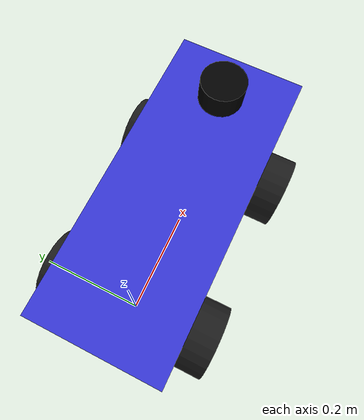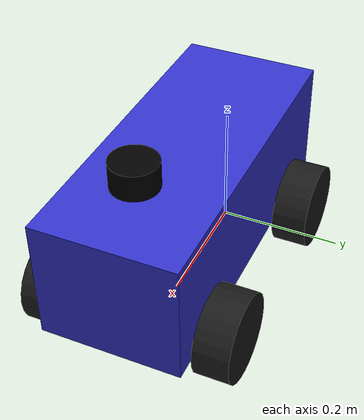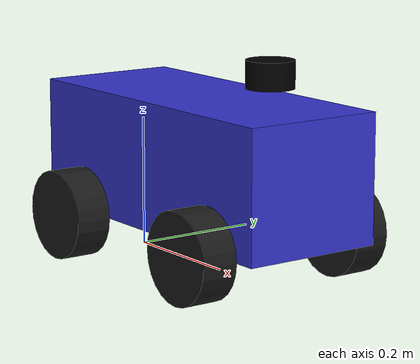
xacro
<?xml version="1.0"?>
<robot name="ackermann_robot" xmlns:xacro="http://www.ros.org/wiki/xacro">

  <!--               PARAMETERS                   -->
  <xacro:property name="B" value="0.3175" /> <!-- 12.5 inches, Wheelbase (front-to-back distance) -->
  <xacro:property name="L" value="0.27" /> <!-- 10.625 inches Track Width (left-to-right distance) -->
  <xacro:property name="W" value="0.055" /> <!-- 55 mm Wheel Width -->
  <xacro:property name="R" value="0.0675" /> <!-- 67.5 mm Wheel Radius -->

  <xacro:property name="X_OFFSET" value="0.2" />
  <xacro:property name="H" value="0.1905" /> <!-- 7.5 inches Wheel Radius -->
  <xacro:property name="chassis_mass" value="10.0" />
  <xacro:property name="wheel_mass" value="1.0" />
  <xacro:property name="total_mass" value="1.0" />
  <xacro:property name="Lower_angle_limit" value="-0.5" />
  <xacro:property name="Upper_angle_limit" value="0.5" />
  <xacro:property name="velocity" value="3.0" />
  <xacro:property name="Effort" value="10.0" />

  <xacro:property name="Wheel_y_inertia" value="${wheel_mass * R * R/2.0}" />
  <xacro:property name="Wheel_inertia" value="${wheel_mass * W * W/12.0 + wheel_mass * R * R/4.0}" />

  <!-- Base footprint / origin link -->
  <link name="base_footprint"/>

  <!-- Base Link / Chassis -->
  <joint name="base_footprint_joint" type="fixed">
    <parent link="base_footprint"/>
    <child link="base_link"/>
    <origin xyz="0 0 ${R}" rpy="0 0 0"/>
  </joint>

  <link name="base_link">
    <visual>
      <origin xyz="${B/2} 0 ${H/2}" rpy="0 0 0"/>
      <geometry>
        <box size="${B + X_OFFSET} ${L - W} ${H}"/>
      </geometry>
      <material name="chassis_color">
        <color rgba="0.2 0.2 0.8 1.0"/>
      </material>
    </visual>
    <collision>
      <origin xyz="${B/2} 0 ${H/2}" rpy="0 0 0"/>
      <geometry>
        <box size="${B + X_OFFSET} ${L - W} ${H}"/>
      </geometry>
    </collision>
    <inertial>
      <origin xyz="${B/2} 0 ${H/2}" rpy="0 0 0"/>
      <mass value="${chassis_mass}"/>
      <inertia ixx="${total_mass * ((L+W)*(L+W) + H * H)/12.0}" ixy="0" ixz="0"
               iyy="${total_mass * ((B + X_OFFSET)*(B + X_OFFSET) + H * H)/12.0}" iyz="0"
               izz="${total_mass * ((B + X_OFFSET)*(B + X_OFFSET) + (L+W)*(L+W))/12.0}"/>
    </inertial>
  </link>

  <!--             REAR WHEELS (DRIVE)            -->

  <!-- Rear Left Wheel -->
  <joint name="rear_left_wheel_joint" type="continuous">
    <parent link="base_link"/>
    <child link="rear_left_wheel"/>
    <origin xyz="0 ${L/2} 0" rpy="-${pi/2} 0 0"/>
    <axis xyz="0 0 1"/>
  </joint>

  <link name="rear_left_wheel">
    <visual>
      <geometry>
        <cylinder radius="${R}" length="${W}"/>
      </geometry>
      <material name="wheel_color">
        <color rgba="0.1 0.1 0.1 1.0"/>
      </material>
    </visual>
    <collision>
      <geometry>
        <cylinder radius="${R}" length="${W}"/>
      </geometry>
    </collision>
    <inertial>
      <mass value="${wheel_mass}"/>
      <inertia ixx="${Wheel_inertia}" ixy="0" ixz="0"
               iyy="${Wheel_y_inertia}" iyz="0"
               izz="${Wheel_inertia}"/>
    </inertial>
  </link>

  <!-- Rear Right Wheel -->
  <joint name="rear_right_wheel_joint" type="continuous">
    <parent link="base_link"/>
    <child link="rear_right_wheel"/>
    <origin xyz="0 -${L/2} 0" rpy="-${pi/2} 0 0"/>
    <axis xyz="0 0 1"/>
  </joint>

  <link name="rear_right_wheel">
    <visual>
      <geometry>
        <cylinder radius="${R}" length="${W}"/>
      </geometry>
      <material name="wheel_color"/>
    </visual>
    <collision>
      <geometry>
        <cylinder radius="${R}" length="${W}"/>
      </geometry>
    </collision>
    <inertial>
      <mass value="${wheel_mass}"/>
      <inertia ixx="${Wheel_inertia}" ixy="0" ixz="0"
               iyy="${Wheel_y_inertia}" iyz="0"
               izz="${Wheel_inertia}"/>
    </inertial>
  </link>

  <!--           FRONT STEERING & WHEELS          -->

  <!-- Front Left Steering Hinge (Revolute joint for steering) -->
  <joint name="front_left_steer_joint" type="revolute">
    <parent link="base_link"/>
    <child link="front_left_steer_link"/>
    <origin xyz="${B} ${L/2} 0" rpy="0 0 0"/>
    <axis xyz="0 0 1"/>
    <limit lower="${Lower_angle_limit}" upper="${Upper_angle_limit}" effort="${Effort}" velocity="${velocity}"/>
  </joint>

  <link name="front_left_steer_link">
    <inertial>
      <mass value="0.1"/>
      <inertia ixx="0.0001" ixy="0" ixz="0"
               iyy="0.0001" iyz="0"
               izz="0.0001"/>
    </inertial>
  </link>

  <!-- Front Left Wheel attached to steering link -->
  <joint name="front_left_wheel_joint" type="continuous">
    <parent link="front_left_steer_link"/>
    <child link="front_left_wheel"/>
    <origin xyz="0 0 0" rpy="-${pi/2} 0 0"/>
    <axis xyz="0 0 1"/>
  </joint>

  <link name="front_left_wheel">
    <visual>
      <geometry>
        <cylinder radius="${R}" length="${W}"/>
      </geometry>
      <material name="wheel_color"/>
    </visual>
    <collision>
      <geometry>
        <cylinder radius="${R}" length="${W}"/>
      </geometry>
    </collision>
    <inertial>
      <mass value="${wheel_mass}"/>
      <inertia ixx="${Wheel_inertia}" ixy="0" ixz="0"
               iyy="${Wheel_y_inertia}" iyz="0"
               izz="${Wheel_inertia}"/>
    </inertial>
  </link>

  <!-- Front Right Steering Hinge -->
  <joint name="front_right_steer_joint" type="revolute">
    <parent link="base_link"/>
    <child link="front_right_steer_link"/>
    <origin xyz="${B} -${L/2} 0" rpy="0 0 0"/>
    <axis xyz="0 0 1"/>
    <limit lower="${Lower_angle_limit}" upper="${Upper_angle_limit}" effort="${Effort}" velocity="${velocity}"/>
  </joint>

  <link name="front_right_steer_link">
    <inertial>
      <mass value="0.1"/>
      <inertia ixx="0.0001" ixy="0" ixz="0"
               iyy="0.0001" iyz="0"
               izz="0.0001"/>
    </inertial>
  </link>

  <!-- Front Right Wheel attached to steering link -->
  <joint name="front_right_wheel_joint" type="continuous">
    <parent link="front_right_steer_link"/>
    <child link="front_right_wheel"/>
    <origin xyz="0 0 0" rpy="-${pi/2} 0 0"/>
    <axis xyz="0 0 1"/>
  </joint>

  <link name="front_right_wheel">
    <visual>
      <geometry>
        <cylinder radius="${R}" length="${W}"/>
      </geometry>
      <material name="wheel_color"/>
    </visual>
    <collision>
      <geometry>
        <cylinder radius="${R}" length="${W}"/>
      </geometry>
    </collision>
    <inertial>
      <mass value="${wheel_mass}"/>
      <inertia ixx="${Wheel_inertia}" ixy="0" ixz="0"
               iyy="${Wheel_y_inertia}" iyz="0"
               izz="${Wheel_inertia}"/>
    </inertial>
  </link>

  <!--             SENSORS (HARDWARE)             -->

  <!-- LiDAR Frame (Adjust origin xyz/rpy to match your physical mount) -->
  <joint name="laser_joint" type="fixed">
    <parent link="base_link"/>
    <child link="hesai_lidar"/>
    <origin xyz="${B} 0 ${H + 0.05}" rpy="0 0 0"/>
  </joint>

  <link name="hesai_lidar">
    <visual>
      <geometry>
        <cylinder radius="0.035" length="0.04"/>
      </geometry>
      <material name="lidar_black">
        <color rgba="0.0 0.0 0.0 1.0"/>
      </material>
    </visual>
  </link>

  <link name="imu_link"/>

  <!-- IMU Link (Adjust location relative to base_link center) -->
  <joint name="imu_joint" type="fixed">
    <parent link="base_link"/>
    <child link="imu_link"/>
    <origin xyz="${B} 0 0.1016" rpy="0 0 0"/> <!-- 0.1016 is the height of imu from the center of the wheel -->
  </joint>

  <link name="zed_camera_link"/>

  <joint name="base_to_camera_joint" type="fixed">
    <parent link="base_link"/>
    <child link="zed_camera_link"/>
    <origin xyz="${B + 0.05} 1.0 0.1484" rpy="0 0 0"/>
  </joint>

</robot>
